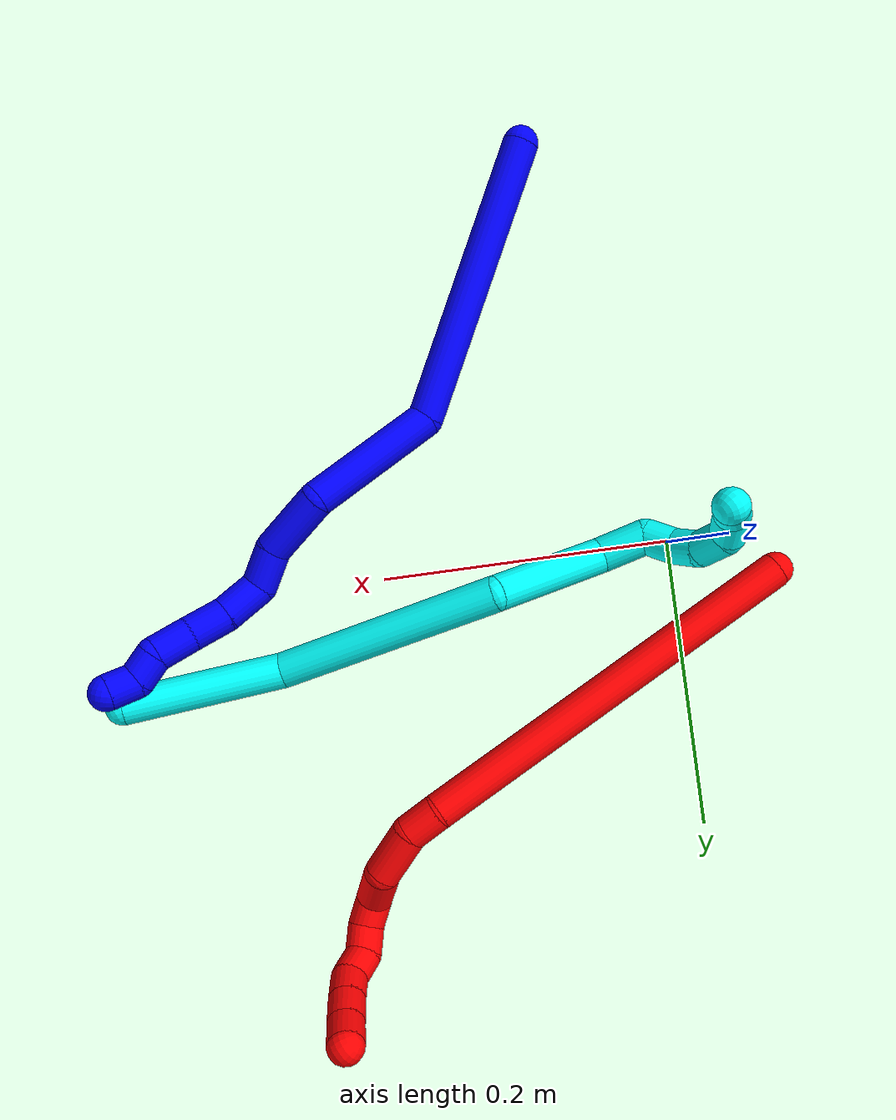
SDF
<sdf version="1.7">
 <world name="default">
  <plugin name="TubeGeneratorPlugin" filename="libtube_generator_plugin.so"/>
  <model name="photoneo_s_sensor">
   <static>1</static>
   <pose>0 0 2 1.57079 1.57079 3.14159</pose>
   <link name="link">
    <inertial><mass>0.1</mass></inertial>
    <sensor name="sensor" type="depth">
     <update_rate>30</update_rate>
     <camera>
      <horizontal_fov>1.22</horizontal_fov>
      <image><width>1920</width><height>1200</height><format>B8G8R8</format></image>
      <clip><near>0.1</near><far>4</far></clip>
      <depth_camera><output>points</output></depth_camera>
     </camera>
     <plugin name="camera_plugin" filename="libgazebo_ros_depth_camera.so">
      <baseline>0.2</baseline>
      <alwaysOn>1</alwaysOn>
      <updateRate>0.0</updateRate>
      <cameraName>camera_ir</cameraName>
      <imageTopicName>/camera/color/image_raw</imageTopicName>
      <cameraInfoTopicName>/camera/color/camera_info</cameraInfoTopicName>
      <depthImageTopicName>/camera/depth/image_raw</depthImageTopicName>
      <depthImageCameraInfoTopicName>/camera/depth/camera_info</depthImageCameraInfoTopicName>
      <pointCloudTopicName>/camera/depth/points</pointCloudTopicName>
      <frameName>fr_optical</frameName>
      <pointCloudCutoff>0.1</pointCloudCutoff>
      <pointCloudCutoffMax>2.0</pointCloudCutoffMax>
      <distortionK1>0</distortionK1>
      <distortionK2>0</distortionK2>
      <distortionK3>0</distortionK3>
      <distortionT1>0</distortionT1>
      <distortionT2>0</distortionT2>
      <CxPrime>0</CxPrime>
      <Cx>0</Cx>
      <Cy>0</Cy>
      <focalLength>0</focalLength>
      <hackBaseline>0</hackBaseline>
     </plugin>
    </sensor>
   </link>
  </model>
  <gravity>0 0 -9.8</gravity>
  <magnetic_field>6e-06 2.3e-05 -4.2e-05</magnetic_field>
  <atmosphere type="adiabatic"/>
  <physics name="default_physics" default="0" type="ode">
   <max_step_size>0.003</max_step_size>
   <real_time_factor>1</real_time_factor>
   <real_time_update_rate>1000</real_time_update_rate>
   <max_contacts>10000</max_contacts>
   <ode>
    <solver>
     <type>quick</type>
     <iters>100</iters>
     <sor>1.3</sor>
     <use_dynamic_moi_rescaling>0</use_dynamic_moi_rescaling>
    </solver>
    <constraints>
     <contact_max_correcting_vel>0</contact_max_correcting_vel>
     <contact_surface_layer>0.001</contact_surface_layer>
     <cfm>0</cfm>
     <erp>0.2</erp>
    </constraints>
   </ode>
  </physics>
  <scene><ambient>0.4 0.4 0.4 1</ambient><background>0.7 0.7 0.7 1</background><shadows>0</shadows></scene>
  <audio><device>default</device></audio>
  <spherical_coordinates>
   <surface_model>EARTH_WGS84</surface_model>
   <latitude_deg>0</latitude_deg>
   <longitude_deg>0</longitude_deg>
   <elevation>0</elevation>
   <heading_deg>0</heading_deg>
  </spherical_coordinates>
  <model name="bin">
   <static>1</static>
   <link name="bottom">
    <collision name="collision-bottom">
     <pose>0 0 -0.01 0 -0 0</pose>
     <geometry><box><size>0.8 0.6 0.02</size></box></geometry>
     <surface>
      <friction><ode><mu>100</mu><mu2>100</mu2></ode></friction>
      <contact><collide_bitmask>65535</collide_bitmask></contact>
     </surface>
    </collision>
   </link>
   <link name="west_wall">
    <collision name="collision-west_wall">
     <pose>-0.41 0 0.1 0 -0 0</pose>
     <geometry><box><size>0.02 0.6 0.2</size></box></geometry>
     <surface>
      <friction><ode><mu>100</mu><mu2>100</mu2></ode></friction>
      <contact><collide_bitmask>65535</collide_bitmask></contact>
     </surface>
    </collision>
   </link>
   <link name="east_wall">
    <collision name="collision-east_wall">
     <pose>0.41 0 0.1 0 -0 0</pose>
     <geometry><box><size>0.02 0.6 0.2</size></box></geometry>
     <surface>
      <friction><ode><mu>100</mu><mu2>100</mu2></ode></friction>
      <contact><collide_bitmask>65535</collide_bitmask></contact>
     </surface>
    </collision>
   </link>
   <link name="south_wall">
    <collision name="collision-south_wall">
     <pose>0 -0.31 0.1 0 -0 0</pose>
     <geometry><box><size>0.8 0.02 0.2</size></box></geometry>
     <surface>
      <friction><ode><mu>100</mu><mu2>100</mu2></ode></friction>
      <contact><collide_bitmask>65535</collide_bitmask></contact>
     </surface>
    </collision>
   </link>
   <link name="north_wall">
    <collision name="collision-north_wall">
     <pose>0 0.31 0.1 0 -0 0</pose>
     <geometry><box><size>0.8 0.02 0.2</size></box></geometry>
     <surface>
      <friction><ode><mu>100</mu><mu2>100</mu2></ode></friction>
      <contact><collide_bitmask>65535</collide_bitmask></contact>
     </surface>
    </collision>
   </link>
  </model>
  <model name="1">
   <static>0</static>
   <link name="1">
    <collision name="collision-cylinder-e_1_1_4">
     <pose>0.016659 0.011794 0.099243 -0.118281 0.165174 -0.009802</pose>
     <geometry><cylinder><radius>0.0125</radius><length>0.20264</length></cylinder></geometry>
     <surface>
      <friction><ode><mu>1.16</mu><mu2>1.16</mu2><slip1>0</slip1><slip2>0</slip2></ode></friction>
      <contact><ode><kp>1e+06</kp><kd>1</kd><max_vel>0</max_vel><min_depth>0.001</min_depth></ode></contact>
     </surface>
    </collision>
    <visual name="visual-cylinder-e_1_1_4">
     <pose>0.016659 0.011794 0.099243 -0.118281 0.165174 -0.009802</pose>
     <geometry><cylinder><radius>0.0125</radius><length>0.20264</length></cylinder></geometry>
     <material><ambient>0 0 1 1</ambient></material>
    </visual>
    <collision name="collision-cylinder-e_2_4_5">
     <pose>0.057797 0.048355 0.230998 -0.651006 0.539611 -0.186135</pose>
     <geometry><cylinder><radius>0.0125</radius><length>0.095283</length></cylinder></geometry>
     <surface>
      <friction><ode><mu>1.16</mu><mu2>1.16</mu2><slip1>0</slip1><slip2>0</slip2></ode></friction>
      <contact><ode><kp>1e+06</kp><kd>1</kd><max_vel>0</max_vel><min_depth>0.001</min_depth></ode></contact>
     </surface>
    </collision>
    <visual name="visual-cylinder-e_2_4_5">
     <pose>0.057797 0.048355 0.230998 -0.651006 0.539611 -0.186135</pose>
     <geometry><cylinder><radius>0.0125</radius><length>0.095283</length></cylinder></geometry>
     <material><ambient>0 0 1 1</ambient></material>
    </visual>
    <collision name="collision-cylinder-e_3_5_6">
     <pose>0.082133 0.086241 0.283184 -0.588096 -0.006025 0.001825</pose>
     <geometry><cylinder><radius>0.0125</radius><length>0.047293</length></cylinder></geometry>
     <surface>
      <friction><ode><mu>1.16</mu><mu2>1.16</mu2><slip1>0</slip1><slip2>0</slip2></ode></friction>
      <contact><ode><kp>1e+06</kp><kd>1</kd><max_vel>0</max_vel><min_depth>0.001</min_depth></ode></contact>
     </surface>
    </collision>
    <visual name="visual-cylinder-e_3_5_6">
     <pose>0.082133 0.086241 0.283184 -0.588096 -0.006025 0.001825</pose>
     <geometry><cylinder><radius>0.0125</radius><length>0.047293</length></cylinder></geometry>
     <material><ambient>0 0 1 1</ambient></material>
    </visual>
    <collision name="collision-cylinder-e_4_6_7">
     <pose>0.081765 0.102552 0.316734 -0.226149 -0.015842 0.001799</pose>
     <geometry><cylinder><radius>0.0125</radius><length>0.028481</length></cylinder></geometry>
     <surface>
      <friction><ode><mu>1.16</mu><mu2>1.16</mu2><slip1>0</slip1><slip2>0</slip2></ode></friction>
      <contact><ode><kp>1e+06</kp><kd>1</kd><max_vel>0</max_vel><min_depth>0.001</min_depth></ode></contact>
     </surface>
    </collision>
    <visual name="visual-cylinder-e_4_6_7">
     <pose>0.081765 0.102552 0.316734 -0.226149 -0.015842 0.001799</pose>
     <geometry><cylinder><radius>0.0125</radius><length>0.028481</length></cylinder></geometry>
     <material><ambient>0 0 1 1</ambient></material>
    </visual>
    <collision name="collision-cylinder-e_5_7_8">
     <pose>0.089124 0.112935 0.341357 -0.589641 0.530516 -0.164617</pose>
     <geometry><cylinder><radius>0.0125</radius><length>0.029982</length></cylinder></geometry>
     <surface>
      <friction><ode><mu>1.16</mu><mu2>1.16</mu2><slip1>0</slip1><slip2>0</slip2></ode></friction>
      <contact><ode><kp>1e+06</kp><kd>1</kd><max_vel>0</max_vel><min_depth>0.001</min_depth></ode></contact>
     </surface>
    </collision>
    <visual name="visual-cylinder-e_5_7_8">
     <pose>0.089124 0.112935 0.341357 -0.589641 0.530516 -0.164617</pose>
     <geometry><cylinder><radius>0.0125</radius><length>0.029982</length></cylinder></geometry>
     <material><ambient>0 0 1 1</ambient></material>
    </visual>
    <collision name="collision-cylinder-e_6_8_9">
     <pose>0.104743 0.128126 0.359924 -0.79685 0.62272 -0.2693</pose>
     <geometry><cylinder><radius>0.0125</radius><length>0.027547</length></cylinder></geometry>
     <surface>
      <friction><ode><mu>1.16</mu><mu2>1.16</mu2><slip1>0</slip1><slip2>0</slip2></ode></friction>
      <contact><ode><kp>1e+06</kp><kd>1</kd><max_vel>0</max_vel><min_depth>0.001</min_depth></ode></contact>
     </surface>
    </collision>
    <visual name="visual-cylinder-e_6_8_9">
     <pose>0.104743 0.128126 0.359924 -0.79685 0.62272 -0.2693</pose>
     <geometry><cylinder><radius>0.0125</radius><length>0.027547</length></cylinder></geometry>
     <material><ambient>0 0 1 1</ambient></material>
    </visual>
    <collision name="collision-cylinder-e_7_9_10">
     <pose>0.12204 0.142958 0.375195 -0.741981 0.741905 -0.300334</pose>
     <geometry><cylinder><radius>0.0125</radius><length>0.027422</length></cylinder></geometry>
     <surface>
      <friction><ode><mu>1.16</mu><mu2>1.16</mu2><slip1>0</slip1><slip2>0</slip2></ode></friction>
      <contact><ode><kp>1e+06</kp><kd>1</kd><max_vel>0</max_vel><min_depth>0.001</min_depth></ode></contact>
     </surface>
    </collision>
    <visual name="visual-cylinder-e_7_9_10">
     <pose>0.12204 0.142958 0.375195 -0.741981 0.741905 -0.300334</pose>
     <geometry><cylinder><radius>0.0125</radius><length>0.027422</length></cylinder></geometry>
     <material><ambient>0 0 1 1</ambient></material>
    </visual>
    <collision name="collision-cylinder-e_8_10_11">
     <pose>0.134487 0.153148 0.391809 -0.351376 0.315154 -0.056398</pose>
     <geometry><cylinder><radius>0.0125</radius><length>0.020532</length></cylinder></geometry>
     <surface>
      <friction><ode><mu>1.16</mu><mu2>1.16</mu2><slip1>0</slip1><slip2>0</slip2></ode></friction>
      <contact><ode><kp>1e+06</kp><kd>1</kd><max_vel>0</max_vel><min_depth>0.001</min_depth></ode></contact>
     </surface>
    </collision>
    <visual name="visual-cylinder-e_8_10_11">
     <pose>0.134487 0.153148 0.391809 -0.351376 0.315154 -0.056398</pose>
     <geometry><cylinder><radius>0.0125</radius><length>0.020532</length></cylinder></geometry>
     <material><ambient>0 0 1 1</ambient></material>
    </visual>
    <collision name="collision-cylinder-e_9_11_2">
     <pose>0.14465 0.162704 0.405581 -0.931466 0.735057 -0.382306</pose>
     <geometry><cylinder><radius>0.0125</radius><length>0.02082</length></cylinder></geometry>
     <surface>
      <friction><ode><mu>1.16</mu><mu2>1.16</mu2><slip1>0</slip1><slip2>0</slip2></ode></friction>
      <contact><ode><kp>1e+06</kp><kd>1</kd><max_vel>0</max_vel><min_depth>0.001</min_depth></ode></contact>
     </surface>
    </collision>
    <visual name="visual-cylinder-e_9_11_2">
     <pose>0.14465 0.162704 0.405581 -0.931466 0.735057 -0.382306</pose>
     <geometry><cylinder><radius>0.0125</radius><length>0.02082</length></cylinder></geometry>
     <material><ambient>0 0 1 1</ambient></material>
    </visual>
    <collision name="collision-sphere-2">
     <pose>0.151632 0.168901 0.410188 0 -0 0</pose>
     <geometry><sphere><radius>0.0125</radius></sphere></geometry>
     <surface>
      <friction><ode><mu>1.16</mu><mu2>1.16</mu2><slip1>0</slip1><slip2>0</slip2></ode></friction>
      <contact><ode><kp>1e+06</kp><kd>1</kd><max_vel>0</max_vel><min_depth>0.001</min_depth></ode></contact>
     </surface>
    </collision>
    <visual name="visual-sphere-2">
     <pose>0.151632 0.168901 0.410188 0 -0 0</pose>
     <geometry><sphere><radius>0.0125</radius></sphere></geometry>
     <material><ambient>0 0 1 1</ambient></material>
    </visual>
    <collision name="collision-sphere-11">
     <pose>0.137669 0.156507 0.400974 0 -0 0</pose>
     <geometry><sphere><radius>0.0125</radius></sphere></geometry>
     <surface>
      <friction><ode><mu>1.16</mu><mu2>1.16</mu2><slip1>0</slip1><slip2>0</slip2></ode></friction>
      <contact><ode><kp>1e+06</kp><kd>1</kd><max_vel>0</max_vel><min_depth>0.001</min_depth></ode></contact>
     </surface>
    </collision>
    <visual name="visual-sphere-11">
     <pose>0.137669 0.156507 0.400974 0 -0 0</pose>
     <geometry><sphere><radius>0.0125</radius></sphere></geometry>
     <material><ambient>0 0 1 1</ambient></material>
    </visual>
    <collision name="collision-sphere-10">
     <pose>0.131305 0.149788 0.382645 0 -0 0</pose>
     <geometry><sphere><radius>0.0125</radius></sphere></geometry>
     <surface>
      <friction><ode><mu>1.16</mu><mu2>1.16</mu2><slip1>0</slip1><slip2>0</slip2></ode></friction>
      <contact><ode><kp>1e+06</kp><kd>1</kd><max_vel>0</max_vel><min_depth>0.001</min_depth></ode></contact>
     </surface>
    </collision>
    <visual name="visual-sphere-10">
     <pose>0.131305 0.149788 0.382645 0 -0 0</pose>
     <geometry><sphere><radius>0.0125</radius></sphere></geometry>
     <material><ambient>0 0 1 1</ambient></material>
    </visual>
    <collision name="collision-sphere-9">
     <pose>0.112776 0.136128 0.367744 0 -0 0</pose>
     <geometry><sphere><radius>0.0125</radius></sphere></geometry>
     <surface>
      <friction><ode><mu>1.16</mu><mu2>1.16</mu2><slip1>0</slip1><slip2>0</slip2></ode></friction>
      <contact><ode><kp>1e+06</kp><kd>1</kd><max_vel>0</max_vel><min_depth>0.001</min_depth></ode></contact>
     </surface>
    </collision>
    <visual name="visual-sphere-9">
     <pose>0.112776 0.136128 0.367744 0 -0 0</pose>
     <geometry><sphere><radius>0.0125</radius></sphere></geometry>
     <material><ambient>0 0 1 1</ambient></material>
    </visual>
    <collision name="collision-sphere-4">
     <pose>0.033319 0.023587 0.198485 0 -0 0</pose>
     <geometry><sphere><radius>0.0125</radius></sphere></geometry>
     <surface>
      <friction><ode><mu>1.16</mu><mu2>1.16</mu2><slip1>0</slip1><slip2>0</slip2></ode></friction>
      <contact><ode><kp>1e+06</kp><kd>1</kd><max_vel>0</max_vel><min_depth>0.001</min_depth></ode></contact>
     </surface>
    </collision>
    <visual name="visual-sphere-4">
     <pose>0.033319 0.023587 0.198485 0 -0 0</pose>
     <geometry><sphere><radius>0.0125</radius></sphere></geometry>
     <material><ambient>0 0 1 1</ambient></material>
    </visual>
    <collision name="collision-sphere-1">
     <geometry><sphere><radius>0.0125</radius></sphere></geometry>
     <surface>
      <friction><ode><mu>1.16</mu><mu2>1.16</mu2><slip1>0</slip1><slip2>0</slip2></ode></friction>
      <contact><ode><kp>1e+06</kp><kd>1</kd><max_vel>0</max_vel><min_depth>0.001</min_depth></ode></contact>
     </surface>
    </collision>
    <visual name="visual-sphere-1">
     <geometry><sphere><radius>0.0125</radius></sphere></geometry>
     <material><ambient>0 0 1 1</ambient></material>
    </visual>
    <collision name="collision-sphere-8">
     <pose>0.096709 0.120125 0.352104 0 -0 0</pose>
     <geometry><sphere><radius>0.0125</radius></sphere></geometry>
     <surface>
      <friction><ode><mu>1.16</mu><mu2>1.16</mu2><slip1>0</slip1><slip2>0</slip2></ode></friction>
      <contact><ode><kp>1e+06</kp><kd>1</kd><max_vel>0</max_vel><min_depth>0.001</min_depth></ode></contact>
     </surface>
    </collision>
    <visual name="visual-sphere-8">
     <pose>0.096709 0.120125 0.352104 0 -0 0</pose>
     <geometry><sphere><radius>0.0125</radius></sphere></geometry>
     <material><ambient>0 0 1 1</ambient></material>
    </visual>
    <collision name="collision-sphere-5">
     <pose>0.082275 0.073123 0.26351 0 -0 0</pose>
     <geometry><sphere><radius>0.0125</radius></sphere></geometry>
     <surface>
      <friction><ode><mu>1.16</mu><mu2>1.16</mu2><slip1>0</slip1><slip2>0</slip2></ode></friction>
      <contact><ode><kp>1e+06</kp><kd>1</kd><max_vel>0</max_vel><min_depth>0.001</min_depth></ode></contact>
     </surface>
    </collision>
    <visual name="visual-sphere-5">
     <pose>0.082275 0.073123 0.26351 0 -0 0</pose>
     <geometry><sphere><radius>0.0125</radius></sphere></geometry>
     <material><ambient>0 0 1 1</ambient></material>
    </visual>
    <collision name="collision-sphere-6">
     <pose>0.08199 0.099359 0.302857 0 -0 0</pose>
     <geometry><sphere><radius>0.0125</radius></sphere></geometry>
     <surface>
      <friction><ode><mu>1.16</mu><mu2>1.16</mu2><slip1>0</slip1><slip2>0</slip2></ode></friction>
      <contact><ode><kp>1e+06</kp><kd>1</kd><max_vel>0</max_vel><min_depth>0.001</min_depth></ode></contact>
     </surface>
    </collision>
    <visual name="visual-sphere-6">
     <pose>0.08199 0.099359 0.302857 0 -0 0</pose>
     <geometry><sphere><radius>0.0125</radius></sphere></geometry>
     <material><ambient>0 0 1 1</ambient></material>
    </visual>
    <collision name="collision-sphere-7">
     <pose>0.081539 0.105745 0.33061 0 -0 0</pose>
     <geometry><sphere><radius>0.0125</radius></sphere></geometry>
     <surface>
      <friction><ode><mu>1.16</mu><mu2>1.16</mu2><slip1>0</slip1><slip2>0</slip2></ode></friction>
      <contact><ode><kp>1e+06</kp><kd>1</kd><max_vel>0</max_vel><min_depth>0.001</min_depth></ode></contact>
     </surface>
    </collision>
    <visual name="visual-sphere-7">
     <pose>0.081539 0.105745 0.33061 0 -0 0</pose>
     <geometry><sphere><radius>0.0125</radius></sphere></geometry>
     <material><ambient>0 0 1 1</ambient></material>
    </visual>
    <inertial>
     <pose>0.059546 0.062729 0.222922 0 -0 0</pose>
     <mass>0.5</mass>
     <inertia>
      <ixx>0.00077</ixx>
      <ixy>0</ixy>
      <ixz>0</ixz>
      <iyy>0.000774</iyy>
      <iyz>0</iyz>
      <izz>-0.000263</izz>
     </inertia>
    </inertial>
   </link>
   <pose>0.065273 -0.28755 0.012414 -1.9628 -1.24589 0.067123</pose>
  </model>
  <model name="2">
   <static>0</static>
   <link name="2">
    <collision name="collision-cylinder-e_1_1_4">
     <pose>0.041092 -0.020262 0.13538 0.148568 0.29163 0.021858</pose>
     <geometry><cylinder><radius>0.0125</radius><length>0.285845</length></cylinder></geometry>
     <surface>
      <friction><ode><mu>1.16</mu><mu2>1.16</mu2><slip1>0</slip1><slip2>0</slip2></ode></friction>
      <contact><ode><kp>1e+06</kp><kd>1</kd><max_vel>0</max_vel><min_depth>0.001</min_depth></ode></contact>
     </surface>
    </collision>
    <visual name="visual-cylinder-e_1_1_4">
     <pose>0.041092 -0.020262 0.13538 0.148568 0.29163 0.021858</pose>
     <geometry><cylinder><radius>0.0125</radius><length>0.285845</length></cylinder></geometry>
     <material><ambient>1 0 0 1</ambient></material>
    </visual>
    <collision name="collision-cylinder-e_2_4_5">
     <pose>0.083181 -0.041138 0.282801 0.050845 0.0825 0.002099</pose>
     <geometry><cylinder><radius>0.0125</radius><length>0.024196</length></cylinder></geometry>
     <surface>
      <friction><ode><mu>1.16</mu><mu2>1.16</mu2><slip1>0</slip1><slip2>0</slip2></ode></friction>
      <contact><ode><kp>1e+06</kp><kd>1</kd><max_vel>0</max_vel><min_depth>0.001</min_depth></ode></contact>
     </surface>
    </collision>
    <visual name="visual-cylinder-e_2_4_5">
     <pose>0.083181 -0.041138 0.282801 0.050845 0.0825 0.002099</pose>
     <geometry><cylinder><radius>0.0125</radius><length>0.024196</length></cylinder></geometry>
     <material><ambient>1 0 0 1</ambient></material>
    </visual>
    <collision name="collision-cylinder-e_3_5_6">
     <pose>0.079281 -0.045182 0.311845 0.199132 -0.27515 -0.027659</pose>
     <geometry><cylinder><radius>0.0125</radius><length>0.036048</length></cylinder></geometry>
     <surface>
      <friction><ode><mu>1.16</mu><mu2>1.16</mu2><slip1>0</slip1><slip2>0</slip2></ode></friction>
      <contact><ode><kp>1e+06</kp><kd>1</kd><max_vel>0</max_vel><min_depth>0.001</min_depth></ode></contact>
     </surface>
    </collision>
    <visual name="visual-cylinder-e_3_5_6">
     <pose>0.079281 -0.045182 0.311845 0.199132 -0.27515 -0.027659</pose>
     <geometry><cylinder><radius>0.0125</radius><length>0.036048</length></cylinder></geometry>
     <material><ambient>1 0 0 1</ambient></material>
    </visual>
    <collision name="collision-cylinder-e_4_6_7">
     <pose>0.062537 -0.048208 0.340646 -0.034346 -0.787222 0.014264</pose>
     <geometry><cylinder><radius>0.0125</radius><length>0.033448</length></cylinder></geometry>
     <surface>
      <friction><ode><mu>1.16</mu><mu2>1.16</mu2><slip1>0</slip1><slip2>0</slip2></ode></friction>
      <contact><ode><kp>1e+06</kp><kd>1</kd><max_vel>0</max_vel><min_depth>0.001</min_depth></ode></contact>
     </surface>
    </collision>
    <visual name="visual-cylinder-e_4_6_7">
     <pose>0.062537 -0.048208 0.340646 -0.034346 -0.787222 0.014264</pose>
     <geometry><cylinder><radius>0.0125</radius><length>0.033448</length></cylinder></geometry>
     <material><ambient>1 0 0 1</ambient></material>
    </visual>
    <collision name="collision-cylinder-e_5_7_8">
     <pose>0.047984 -0.052946 0.360616 0.56175 -0.273184 -0.079266</pose>
     <geometry><cylinder><radius>0.0125</radius><length>0.020057</length></cylinder></geometry>
     <surface>
      <friction><ode><mu>1.16</mu><mu2>1.16</mu2><slip1>0</slip1><slip2>0</slip2></ode></friction>
      <contact><ode><kp>1e+06</kp><kd>1</kd><max_vel>0</max_vel><min_depth>0.001</min_depth></ode></contact>
     </surface>
    </collision>
    <visual name="visual-cylinder-e_5_7_8">
     <pose>0.047984 -0.052946 0.360616 0.56175 -0.273184 -0.079266</pose>
     <geometry><cylinder><radius>0.0125</radius><length>0.020057</length></cylinder></geometry>
     <material><ambient>1 0 0 1</ambient></material>
    </visual>
    <collision name="collision-cylinder-e_6_8_9">
     <pose>0.045988 -0.06686 0.373724 1.05818 0.070446 0.041201</pose>
     <geometry><cylinder><radius>0.0125</radius><length>0.020177</length></cylinder></geometry>
     <surface>
      <friction><ode><mu>1.16</mu><mu2>1.16</mu2><slip1>0</slip1><slip2>0</slip2></ode></friction>
      <contact><ode><kp>1e+06</kp><kd>1</kd><max_vel>0</max_vel><min_depth>0.001</min_depth></ode></contact>
     </surface>
    </collision>
    <visual name="visual-cylinder-e_6_8_9">
     <pose>0.045988 -0.06686 0.373724 1.05818 0.070446 0.041201</pose>
     <geometry><cylinder><radius>0.0125</radius><length>0.020177</length></cylinder></geometry>
     <material><ambient>1 0 0 1</ambient></material>
    </visual>
    <collision name="collision-cylinder-e_7_9_10">
     <pose>0.052518 -0.082131 0.383611 0.919942 0.618847 0.314149</pose>
     <geometry><cylinder><radius>0.0125</radius><length>0.020064</length></cylinder></geometry>
     <surface>
      <friction><ode><mu>1.16</mu><mu2>1.16</mu2><slip1>0</slip1><slip2>0</slip2></ode></friction>
      <contact><ode><kp>1e+06</kp><kd>1</kd><max_vel>0</max_vel><min_depth>0.001</min_depth></ode></contact>
     </surface>
    </collision>
    <visual name="visual-cylinder-e_7_9_10">
     <pose>0.052518 -0.082131 0.383611 0.919942 0.618847 0.314149</pose>
     <geometry><cylinder><radius>0.0125</radius><length>0.020064</length></cylinder></geometry>
     <material><ambient>1 0 0 1</ambient></material>
    </visual>
    <collision name="collision-cylinder-e_8_10_11">
     <pose>0.063709 -0.097049 0.389497 1.46015 0.565325 0.508655</pose>
     <geometry><cylinder><radius>0.0125</radius><length>0.020057</length></cylinder></geometry>
     <surface>
      <friction><ode><mu>1.16</mu><mu2>1.16</mu2><slip1>0</slip1><slip2>0</slip2></ode></friction>
      <contact><ode><kp>1e+06</kp><kd>1</kd><max_vel>0</max_vel><min_depth>0.001</min_depth></ode></contact>
     </surface>
    </collision>
    <visual name="visual-cylinder-e_8_10_11">
     <pose>0.063709 -0.097049 0.389497 1.46015 0.565325 0.508655</pose>
     <geometry><cylinder><radius>0.0125</radius><length>0.020057</length></cylinder></geometry>
     <material><ambient>1 0 0 1</ambient></material>
    </visual>
    <collision name="collision-cylinder-e_9_11_12">
     <pose>0.074149 -0.114083 0.391031 1.50139 0.530451 0.496346</pose>
     <geometry><cylinder><radius>0.0125</radius><length>0.020031</length></cylinder></geometry>
     <surface>
      <friction><ode><mu>1.16</mu><mu2>1.16</mu2><slip1>0</slip1><slip2>0</slip2></ode></friction>
      <contact><ode><kp>1e+06</kp><kd>1</kd><max_vel>0</max_vel><min_depth>0.001</min_depth></ode></contact>
     </surface>
    </collision>
    <visual name="visual-cylinder-e_9_11_12">
     <pose>0.074149 -0.114083 0.391031 1.50139 0.530451 0.496346</pose>
     <geometry><cylinder><radius>0.0125</radius><length>0.020031</length></cylinder></geometry>
     <material><ambient>1 0 0 1</ambient></material>
    </visual>
    <collision name="collision-cylinder-e_10_12_2">
     <pose>0.084555 -0.131202 0.391639 1.56977 0.560862 0.560316</pose>
     <geometry><cylinder><radius>0.0125</radius><length>0.020076</length></cylinder></geometry>
     <surface>
      <friction><ode><mu>1.16</mu><mu2>1.16</mu2><slip1>0</slip1><slip2>0</slip2></ode></friction>
      <contact><ode><kp>1e+06</kp><kd>1</kd><max_vel>0</max_vel><min_depth>0.001</min_depth></ode></contact>
     </surface>
    </collision>
    <visual name="visual-cylinder-e_10_12_2">
     <pose>0.084555 -0.131202 0.391639 1.56977 0.560862 0.560316</pose>
     <geometry><cylinder><radius>0.0125</radius><length>0.020076</length></cylinder></geometry>
     <material><ambient>1 0 0 1</ambient></material>
    </visual>
    <collision name="collision-sphere-2">
     <pose>0.089895 -0.139702 0.391648 0 -0 0</pose>
     <geometry><sphere><radius>0.0125</radius></sphere></geometry>
     <surface>
      <friction><ode><mu>1.16</mu><mu2>1.16</mu2><slip1>0</slip1><slip2>0</slip2></ode></friction>
      <contact><ode><kp>1e+06</kp><kd>1</kd><max_vel>0</max_vel><min_depth>0.001</min_depth></ode></contact>
     </surface>
    </collision>
    <visual name="visual-sphere-2">
     <pose>0.089895 -0.139702 0.391648 0 -0 0</pose>
     <geometry><sphere><radius>0.0125</radius></sphere></geometry>
     <material><ambient>1 0 0 1</ambient></material>
    </visual>
    <collision name="collision-sphere-12">
     <pose>0.079216 -0.122702 0.39163 0 -0 0</pose>
     <geometry><sphere><radius>0.0125</radius></sphere></geometry>
     <surface>
      <friction><ode><mu>1.16</mu><mu2>1.16</mu2><slip1>0</slip1><slip2>0</slip2></ode></friction>
      <contact><ode><kp>1e+06</kp><kd>1</kd><max_vel>0</max_vel><min_depth>0.001</min_depth></ode></contact>
     </surface>
    </collision>
    <visual name="visual-sphere-12">
     <pose>0.079216 -0.122702 0.39163 0 -0 0</pose>
     <geometry><sphere><radius>0.0125</radius></sphere></geometry>
     <material><ambient>1 0 0 1</ambient></material>
    </visual>
    <collision name="collision-sphere-11">
     <pose>0.069081 -0.105465 0.390432 0 -0 0</pose>
     <geometry><sphere><radius>0.0125</radius></sphere></geometry>
     <surface>
      <friction><ode><mu>1.16</mu><mu2>1.16</mu2><slip1>0</slip1><slip2>0</slip2></ode></friction>
      <contact><ode><kp>1e+06</kp><kd>1</kd><max_vel>0</max_vel><min_depth>0.001</min_depth></ode></contact>
     </surface>
    </collision>
    <visual name="visual-sphere-11">
     <pose>0.069081 -0.105465 0.390432 0 -0 0</pose>
     <geometry><sphere><radius>0.0125</radius></sphere></geometry>
     <material><ambient>1 0 0 1</ambient></material>
    </visual>
    <collision name="collision-sphere-10">
     <pose>0.058337 -0.088632 0.388562 0 -0 0</pose>
     <geometry><sphere><radius>0.0125</radius></sphere></geometry>
     <surface>
      <friction><ode><mu>1.16</mu><mu2>1.16</mu2><slip1>0</slip1><slip2>0</slip2></ode></friction>
      <contact><ode><kp>1e+06</kp><kd>1</kd><max_vel>0</max_vel><min_depth>0.001</min_depth></ode></contact>
     </surface>
    </collision>
    <visual name="visual-sphere-10">
     <pose>0.058337 -0.088632 0.388562 0 -0 0</pose>
     <geometry><sphere><radius>0.0125</radius></sphere></geometry>
     <material><ambient>1 0 0 1</ambient></material>
    </visual>
    <collision name="collision-sphere-9">
     <pose>0.046698 -0.07563 0.37866 0 -0 0</pose>
     <geometry><sphere><radius>0.0125</radius></sphere></geometry>
     <surface>
      <friction><ode><mu>1.16</mu><mu2>1.16</mu2><slip1>0</slip1><slip2>0</slip2></ode></friction>
      <contact><ode><kp>1e+06</kp><kd>1</kd><max_vel>0</max_vel><min_depth>0.001</min_depth></ode></contact>
     </surface>
    </collision>
    <visual name="visual-sphere-9">
     <pose>0.046698 -0.07563 0.37866 0 -0 0</pose>
     <geometry><sphere><radius>0.0125</radius></sphere></geometry>
     <material><ambient>1 0 0 1</ambient></material>
    </visual>
    <collision name="collision-sphere-4">
     <pose>0.082184 -0.040525 0.270759 0 -0 0</pose>
     <geometry><sphere><radius>0.0125</radius></sphere></geometry>
     <surface>
      <friction><ode><mu>1.16</mu><mu2>1.16</mu2><slip1>0</slip1><slip2>0</slip2></ode></friction>
      <contact><ode><kp>1e+06</kp><kd>1</kd><max_vel>0</max_vel><min_depth>0.001</min_depth></ode></contact>
     </surface>
    </collision>
    <visual name="visual-sphere-4">
     <pose>0.082184 -0.040525 0.270759 0 -0 0</pose>
     <geometry><sphere><radius>0.0125</radius></sphere></geometry>
     <material><ambient>1 0 0 1</ambient></material>
    </visual>
    <collision name="collision-sphere-1">
     <geometry><sphere><radius>0.0125</radius></sphere></geometry>
     <surface>
      <friction><ode><mu>1.16</mu><mu2>1.16</mu2><slip1>0</slip1><slip2>0</slip2></ode></friction>
      <contact><ode><kp>1e+06</kp><kd>1</kd><max_vel>0</max_vel><min_depth>0.001</min_depth></ode></contact>
     </surface>
    </collision>
    <visual name="visual-sphere-1">
     <geometry><sphere><radius>0.0125</radius></sphere></geometry>
     <material><ambient>1 0 0 1</ambient></material>
    </visual>
    <collision name="collision-sphere-8">
     <pose>0.045278 -0.05809 0.368789 0 -0 0</pose>
     <geometry><sphere><radius>0.0125</radius></sphere></geometry>
     <surface>
      <friction><ode><mu>1.16</mu><mu2>1.16</mu2><slip1>0</slip1><slip2>0</slip2></ode></friction>
      <contact><ode><kp>1e+06</kp><kd>1</kd><max_vel>0</max_vel><min_depth>0.001</min_depth></ode></contact>
     </surface>
    </collision>
    <visual name="visual-sphere-8">
     <pose>0.045278 -0.05809 0.368789 0 -0 0</pose>
     <geometry><sphere><radius>0.0125</radius></sphere></geometry>
     <material><ambient>1 0 0 1</ambient></material>
    </visual>
    <collision name="collision-sphere-5">
     <pose>0.084178 -0.04175 0.294842 0 -0 0</pose>
     <geometry><sphere><radius>0.0125</radius></sphere></geometry>
     <surface>
      <friction><ode><mu>1.16</mu><mu2>1.16</mu2><slip1>0</slip1><slip2>0</slip2></ode></friction>
      <contact><ode><kp>1e+06</kp><kd>1</kd><max_vel>0</max_vel><min_depth>0.001</min_depth></ode></contact>
     </surface>
    </collision>
    <visual name="visual-sphere-5">
     <pose>0.084178 -0.04175 0.294842 0 -0 0</pose>
     <geometry><sphere><radius>0.0125</radius></sphere></geometry>
     <material><ambient>1 0 0 1</ambient></material>
    </visual>
    <collision name="collision-sphere-6">
     <pose>0.074384 -0.048613 0.328849 0 -0 0</pose>
     <geometry><sphere><radius>0.0125</radius></sphere></geometry>
     <surface>
      <friction><ode><mu>1.16</mu><mu2>1.16</mu2><slip1>0</slip1><slip2>0</slip2></ode></friction>
      <contact><ode><kp>1e+06</kp><kd>1</kd><max_vel>0</max_vel><min_depth>0.001</min_depth></ode></contact>
     </surface>
    </collision>
    <visual name="visual-sphere-6">
     <pose>0.074384 -0.048613 0.328849 0 -0 0</pose>
     <geometry><sphere><radius>0.0125</radius></sphere></geometry>
     <material><ambient>1 0 0 1</ambient></material>
    </visual>
    <collision name="collision-sphere-7">
     <pose>0.05069 -0.047802 0.352443 0 -0 0</pose>
     <geometry><sphere><radius>0.0125</radius></sphere></geometry>
     <surface>
      <friction><ode><mu>1.16</mu><mu2>1.16</mu2><slip1>0</slip1><slip2>0</slip2></ode></friction>
      <contact><ode><kp>1e+06</kp><kd>1</kd><max_vel>0</max_vel><min_depth>0.001</min_depth></ode></contact>
     </surface>
    </collision>
    <visual name="visual-sphere-7">
     <pose>0.05069 -0.047802 0.352443 0 -0 0</pose>
     <geometry><sphere><radius>0.0125</radius></sphere></geometry>
     <material><ambient>1 0 0 1</ambient></material>
    </visual>
    <inertial>
     <pose>0.052226 -0.041906 0.228307 0 -0 0</pose>
     <mass>0.5</mass>
     <inertia>
      <ixx>0.001942</ixx>
      <ixy>0</ixy>
      <ixz>0</ixz>
      <iyy>0.001986</iyy>
      <iyz>0</iyz>
      <izz>-0.000245</izz>
     </inertia>
    </inertial>
   </link>
   <pose>-0.070452 0.029343 0.012299 -1.8729 -0.893726 -0.800719</pose>
  </model>
  <model name="3">
   <static>0</static>
   <link name="3">
    <collision name="collision-cylinder-e_1_1_4">
     <pose>-0.020965 -0.003475 -0.05116 3.07378 -0.388113 -2.79978</pose>
     <geometry><cylinder><radius>0.0125</radius><length>0.110797</length></cylinder></geometry>
     <surface>
      <friction><ode><mu>1.16</mu><mu2>1.16</mu2><slip1>0</slip1><slip2>0</slip2></ode></friction>
      <contact><ode><kp>1e+06</kp><kd>1</kd><max_vel>0</max_vel><min_depth>0.001</min_depth></ode></contact>
     </surface>
    </collision>
    <visual name="visual-cylinder-e_1_1_4">
     <pose>-0.020965 -0.003475 -0.05116 3.07378 -0.388113 -2.79978</pose>
     <geometry><cylinder><radius>0.0125</radius><length>0.110797</length></cylinder></geometry>
     <material><ambient>0.003922 1 0.996078 1</ambient></material>
    </visual>
    <collision name="collision-cylinder-e_2_4_5">
     <pose>-0.072558 -0.041617 -0.168038 2.65617 -0.390995 -1.34925</pose>
     <geometry><cylinder><radius>0.0125</radius><length>0.160731</length></cylinder></geometry>
     <surface>
      <friction><ode><mu>1.16</mu><mu2>1.16</mu2><slip1>0</slip1><slip2>0</slip2></ode></friction>
      <contact><ode><kp>1e+06</kp><kd>1</kd><max_vel>0</max_vel><min_depth>0.001</min_depth></ode></contact>
     </surface>
    </collision>
    <visual name="visual-cylinder-e_2_4_5">
     <pose>-0.072558 -0.041617 -0.168038 2.65617 -0.390995 -1.34925</pose>
     <geometry><cylinder><radius>0.0125</radius><length>0.160731</length></cylinder></geometry>
     <material><ambient>0.003922 1 0.996078 1</ambient></material>
    </visual>
    <collision name="collision-cylinder-e_3_5_6">
     <pose>-0.109353 -0.068359 -0.275702 -2.95487 -0.143472 1.30915</pose>
     <geometry><cylinder><radius>0.0125</radius><length>0.086265</length></cylinder></geometry>
     <surface>
      <friction><ode><mu>1.16</mu><mu2>1.16</mu2><slip1>0</slip1><slip2>0</slip2></ode></friction>
      <contact><ode><kp>1e+06</kp><kd>1</kd><max_vel>0</max_vel><min_depth>0.001</min_depth></ode></contact>
     </surface>
    </collision>
    <visual name="visual-cylinder-e_3_5_6">
     <pose>-0.109353 -0.068359 -0.275702 -2.95487 -0.143472 1.30915</pose>
     <geometry><cylinder><radius>0.0125</radius><length>0.086265</length></cylinder></geometry>
     <material><ambient>0.003922 1 0.996078 1</ambient></material>
    </visual>
    <collision name="collision-cylinder-e_4_6_7">
     <pose>-0.120902 -0.066694 -0.332861 2.75119 -0.31617 -1.35712</pose>
     <geometry><cylinder><radius>0.0125</radius><length>0.034614</length></cylinder></geometry>
     <surface>
      <friction><ode><mu>1.16</mu><mu2>1.16</mu2><slip1>0</slip1><slip2>0</slip2></ode></friction>
      <contact><ode><kp>1e+06</kp><kd>1</kd><max_vel>0</max_vel><min_depth>0.001</min_depth></ode></contact>
     </surface>
    </collision>
    <visual name="visual-cylinder-e_4_6_7">
     <pose>-0.120902 -0.066694 -0.332861 2.75119 -0.31617 -1.35712</pose>
     <geometry><cylinder><radius>0.0125</radius><length>0.034614</length></cylinder></geometry>
     <material><ambient>0.003922 1 0.996078 1</ambient></material>
    </visual>
    <collision name="collision-cylinder-e_5_7_8">
     <pose>-0.1359 -0.075992 -0.352214 2.5088 -1.08021 -2.14199</pose>
     <geometry><cylinder><radius>0.0125</radius><length>0.021806</length></cylinder></geometry>
     <surface>
      <friction><ode><mu>1.16</mu><mu2>1.16</mu2><slip1>0</slip1><slip2>0</slip2></ode></friction>
      <contact><ode><kp>1e+06</kp><kd>1</kd><max_vel>0</max_vel><min_depth>0.001</min_depth></ode></contact>
     </surface>
    </collision>
    <visual name="visual-cylinder-e_5_7_8">
     <pose>-0.1359 -0.075992 -0.352214 2.5088 -1.08021 -2.14199</pose>
     <geometry><cylinder><radius>0.0125</radius><length>0.021806</length></cylinder></geometry>
     <material><ambient>0.003922 1 0.996078 1</ambient></material>
    </visual>
    <collision name="collision-cylinder-e_6_8_9">
     <pose>-0.153092 -0.085596 -0.358974 1.95021 -0.819933 -1.14026</pose>
     <geometry><cylinder><radius>0.0125</radius><length>0.020721</length></cylinder></geometry>
     <surface>
      <friction><ode><mu>1.16</mu><mu2>1.16</mu2><slip1>0</slip1><slip2>0</slip2></ode></friction>
      <contact><ode><kp>1e+06</kp><kd>1</kd><max_vel>0</max_vel><min_depth>0.001</min_depth></ode></contact>
     </surface>
    </collision>
    <visual name="visual-cylinder-e_6_8_9">
     <pose>-0.153092 -0.085596 -0.358974 1.95021 -0.819933 -1.14026</pose>
     <geometry><cylinder><radius>0.0125</radius><length>0.020721</length></cylinder></geometry>
     <material><ambient>0.003922 1 0.996078 1</ambient></material>
    </visual>
    <collision name="collision-cylinder-e_7_9_10">
     <pose>-0.164901 -0.102231 -0.366432 2.01883 -0.362271 -0.56677</pose>
     <geometry><cylinder><radius>0.0125</radius><length>0.023896</length></cylinder></geometry>
     <surface>
      <friction><ode><mu>1.16</mu><mu2>1.16</mu2><slip1>0</slip1><slip2>0</slip2></ode></friction>
      <contact><ode><kp>1e+06</kp><kd>1</kd><max_vel>0</max_vel><min_depth>0.001</min_depth></ode></contact>
     </surface>
    </collision>
    <visual name="visual-cylinder-e_7_9_10">
     <pose>-0.164901 -0.102231 -0.366432 2.01883 -0.362271 -0.56677</pose>
     <geometry><cylinder><radius>0.0125</radius><length>0.023896</length></cylinder></geometry>
     <material><ambient>0.003922 1 0.996078 1</ambient></material>
    </visual>
    <collision name="collision-cylinder-e_8_10_11">
     <pose>-0.166659 -0.122138 -0.372483 1.69328 0.244809 0.27641</pose>
     <geometry><cylinder><radius>0.0125</radius><length>0.020431</length></cylinder></geometry>
     <surface>
      <friction><ode><mu>1.16</mu><mu2>1.16</mu2><slip1>0</slip1><slip2>0</slip2></ode></friction>
      <contact><ode><kp>1e+06</kp><kd>1</kd><max_vel>0</max_vel><min_depth>0.001</min_depth></ode></contact>
     </surface>
    </collision>
    <visual name="visual-cylinder-e_8_10_11">
     <pose>-0.166659 -0.122138 -0.372483 1.69328 0.244809 0.27641</pose>
     <geometry><cylinder><radius>0.0125</radius><length>0.020431</length></cylinder></geometry>
     <material><ambient>0.003922 1 0.996078 1</ambient></material>
    </visual>
    <collision name="collision-cylinder-e_9_11_2">
     <pose>-0.164545 -0.141353 -0.369285 1.13131 -0.034887 -0.02215</pose>
     <geometry><cylinder><radius>0.0125</radius><length>0.020739</length></cylinder></geometry>
     <surface>
      <friction><ode><mu>1.16</mu><mu2>1.16</mu2><slip1>0</slip1><slip2>0</slip2></ode></friction>
      <contact><ode><kp>1e+06</kp><kd>1</kd><max_vel>0</max_vel><min_depth>0.001</min_depth></ode></contact>
     </surface>
    </collision>
    <visual name="visual-cylinder-e_9_11_2">
     <pose>-0.164545 -0.141353 -0.369285 1.13131 -0.034887 -0.02215</pose>
     <geometry><cylinder><radius>0.0125</radius><length>0.020739</length></cylinder></geometry>
     <material><ambient>0.003922 1 0.996078 1</ambient></material>
    </visual>
    <collision name="collision-sphere-2">
     <pose>-0.164906 -0.150731 -0.364876 0 -0 0</pose>
     <geometry><sphere><radius>0.0125</radius></sphere></geometry>
     <surface>
      <friction><ode><mu>1.16</mu><mu2>1.16</mu2><slip1>0</slip1><slip2>0</slip2></ode></friction>
      <contact><ode><kp>1e+06</kp><kd>1</kd><max_vel>0</max_vel><min_depth>0.001</min_depth></ode></contact>
     </surface>
    </collision>
    <visual name="visual-sphere-2">
     <pose>-0.164906 -0.150731 -0.364876 0 -0 0</pose>
     <geometry><sphere><radius>0.0125</radius></sphere></geometry>
     <material><ambient>0.003922 1 0.996078 1</ambient></material>
    </visual>
    <collision name="collision-sphere-11">
     <pose>-0.164183 -0.131975 -0.373694 0 -0 0</pose>
     <geometry><sphere><radius>0.0125</radius></sphere></geometry>
     <surface>
      <friction><ode><mu>1.16</mu><mu2>1.16</mu2><slip1>0</slip1><slip2>0</slip2></ode></friction>
      <contact><ode><kp>1e+06</kp><kd>1</kd><max_vel>0</max_vel><min_depth>0.001</min_depth></ode></contact>
     </surface>
    </collision>
    <visual name="visual-sphere-11">
     <pose>-0.164183 -0.131975 -0.373694 0 -0 0</pose>
     <geometry><sphere><radius>0.0125</radius></sphere></geometry>
     <material><ambient>0.003922 1 0.996078 1</ambient></material>
    </visual>
    <collision name="collision-sphere-10">
     <pose>-0.169135 -0.112301 -0.371272 0 -0 0</pose>
     <geometry><sphere><radius>0.0125</radius></sphere></geometry>
     <surface>
      <friction><ode><mu>1.16</mu><mu2>1.16</mu2><slip1>0</slip1><slip2>0</slip2></ode></friction>
      <contact><ode><kp>1e+06</kp><kd>1</kd><max_vel>0</max_vel><min_depth>0.001</min_depth></ode></contact>
     </surface>
    </collision>
    <visual name="visual-sphere-10">
     <pose>-0.169135 -0.112301 -0.371272 0 -0 0</pose>
     <geometry><sphere><radius>0.0125</radius></sphere></geometry>
     <material><ambient>0.003922 1 0.996078 1</ambient></material>
    </visual>
    <collision name="collision-sphere-9">
     <pose>-0.160666 -0.092162 -0.361593 0 -0 0</pose>
     <geometry><sphere><radius>0.0125</radius></sphere></geometry>
     <surface>
      <friction><ode><mu>1.16</mu><mu2>1.16</mu2><slip1>0</slip1><slip2>0</slip2></ode></friction>
      <contact><ode><kp>1e+06</kp><kd>1</kd><max_vel>0</max_vel><min_depth>0.001</min_depth></ode></contact>
     </surface>
    </collision>
    <visual name="visual-sphere-9">
     <pose>-0.160666 -0.092162 -0.361593 0 -0 0</pose>
     <geometry><sphere><radius>0.0125</radius></sphere></geometry>
     <material><ambient>0.003922 1 0.996078 1</ambient></material>
    </visual>
    <collision name="collision-sphere-4">
     <pose>-0.04193 -0.006949 -0.102321 0 -0 0</pose>
     <geometry><sphere><radius>0.0125</radius></sphere></geometry>
     <surface>
      <friction><ode><mu>1.16</mu><mu2>1.16</mu2><slip1>0</slip1><slip2>0</slip2></ode></friction>
      <contact><ode><kp>1e+06</kp><kd>1</kd><max_vel>0</max_vel><min_depth>0.001</min_depth></ode></contact>
     </surface>
    </collision>
    <visual name="visual-sphere-4">
     <pose>-0.04193 -0.006949 -0.102321 0 -0 0</pose>
     <geometry><sphere><radius>0.0125</radius></sphere></geometry>
     <material><ambient>0.003922 1 0.996078 1</ambient></material>
    </visual>
    <collision name="collision-sphere-1">
     <geometry><sphere><radius>0.0125</radius></sphere></geometry>
     <surface>
      <friction><ode><mu>1.16</mu><mu2>1.16</mu2><slip1>0</slip1><slip2>0</slip2></ode></friction>
      <contact><ode><kp>1e+06</kp><kd>1</kd><max_vel>0</max_vel><min_depth>0.001</min_depth></ode></contact>
     </surface>
    </collision>
    <visual name="visual-sphere-1">
     <geometry><sphere><radius>0.0125</radius></sphere></geometry>
     <material><ambient>0.003922 1 0.996078 1</ambient></material>
    </visual>
    <collision name="collision-sphere-8">
     <pose>-0.145517 -0.07903 -0.356356 0 -0 0</pose>
     <geometry><sphere><radius>0.0125</radius></sphere></geometry>
     <surface>
      <friction><ode><mu>1.16</mu><mu2>1.16</mu2><slip1>0</slip1><slip2>0</slip2></ode></friction>
      <contact><ode><kp>1e+06</kp><kd>1</kd><max_vel>0</max_vel><min_depth>0.001</min_depth></ode></contact>
     </surface>
    </collision>
    <visual name="visual-sphere-8">
     <pose>-0.145517 -0.07903 -0.356356 0 -0 0</pose>
     <geometry><sphere><radius>0.0125</radius></sphere></geometry>
     <material><ambient>0.003922 1 0.996078 1</ambient></material>
    </visual>
    <collision name="collision-sphere-5">
     <pose>-0.103186 -0.076284 -0.233755 0 -0 0</pose>
     <geometry><sphere><radius>0.0125</radius></sphere></geometry>
     <surface>
      <friction><ode><mu>1.16</mu><mu2>1.16</mu2><slip1>0</slip1><slip2>0</slip2></ode></friction>
      <contact><ode><kp>1e+06</kp><kd>1</kd><max_vel>0</max_vel><min_depth>0.001</min_depth></ode></contact>
     </surface>
    </collision>
    <visual name="visual-sphere-5">
     <pose>-0.103186 -0.076284 -0.233755 0 -0 0</pose>
     <geometry><sphere><radius>0.0125</radius></sphere></geometry>
     <material><ambient>0.003922 1 0.996078 1</ambient></material>
    </visual>
    <collision name="collision-sphere-6">
     <pose>-0.115521 -0.060434 -0.317649 0 -0 0</pose>
     <geometry><sphere><radius>0.0125</radius></sphere></geometry>
     <surface>
      <friction><ode><mu>1.16</mu><mu2>1.16</mu2><slip1>0</slip1><slip2>0</slip2></ode></friction>
      <contact><ode><kp>1e+06</kp><kd>1</kd><max_vel>0</max_vel><min_depth>0.001</min_depth></ode></contact>
     </surface>
    </collision>
    <visual name="visual-sphere-6">
     <pose>-0.115521 -0.060434 -0.317649 0 -0 0</pose>
     <geometry><sphere><radius>0.0125</radius></sphere></geometry>
     <material><ambient>0.003922 1 0.996078 1</ambient></material>
    </visual>
    <collision name="collision-sphere-7">
     <pose>-0.126283 -0.072954 -0.348072 0 -0 0</pose>
     <geometry><sphere><radius>0.0125</radius></sphere></geometry>
     <surface>
      <friction><ode><mu>1.16</mu><mu2>1.16</mu2><slip1>0</slip1><slip2>0</slip2></ode></friction>
      <contact><ode><kp>1e+06</kp><kd>1</kd><max_vel>0</max_vel><min_depth>0.001</min_depth></ode></contact>
     </surface>
    </collision>
    <visual name="visual-sphere-7">
     <pose>-0.126283 -0.072954 -0.348072 0 -0 0</pose>
     <geometry><sphere><radius>0.0125</radius></sphere></geometry>
     <material><ambient>0.003922 1 0.996078 1</ambient></material>
    </visual>
    <inertial>
     <pose>-0.088994 -0.05316 -0.214252 0 -0 0</pose>
     <mass>0.5</mass>
     <inertia>
      <ixx>-0.00033</ixx>
      <ixy>0</ixy>
      <ixz>0</ixz>
      <iyy>-0.000225</iyy>
      <iyz>0</iyz>
      <izz>0.00032</izz>
     </inertia>
    </inertial>
   </link>
   <pose>0.387046 0.062441 0.025565 -1.20829 0.342784 -1.01655</pose>
  </model>
 </world>
</sdf>
